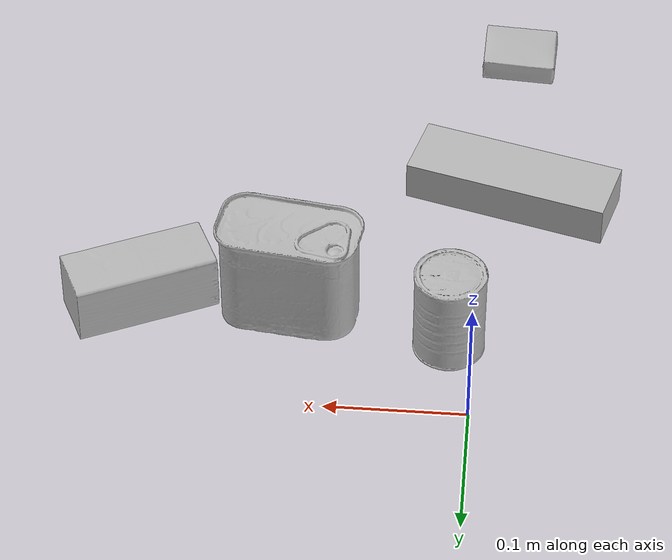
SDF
<sdf version="1.4">
  <world name="default">
    <light name="light1" type="point">
      <pose>0 0 1 0 0 0</pose>
      <diffuse>3 3 3 1</diffuse>
      <specular>3 3 3 1</specular>
    </light>
    <light name="light2" type="point">
      <pose>0 0.5 2 0 0 0</pose>
      <diffuse>1 1 1 1</diffuse>
      <specular>1 1 1 1</specular>
    </light>
    <light name="light3" type="point">
      <pose>0 0.5 2 0 0 0</pose>
      <diffuse>3 3 3 1</diffuse>
      <specular>3 3 3 1</specular>
    </light>
    <scene>
      <ambient>0.7 0.7 0.7</ambient>
    </scene>
    <model name="box1">
      <link name="link_box1">
        <collision name="default">
          <geometry>
            <mesh>
              <uri>model://pudding_box/collision_meshes/collision.obj</uri>
              <scale>0.5 0.5 0.5</scale>
            </mesh>
          </geometry>
          <surface>
            <friction>
              <ode>
                <mu>0.5</mu>
                <mu2>0.5</mu2>
              </ode>
            </friction>
          <contact>
        <ode>
            <max_vel>0</max_vel>
            <min_depth>0.0001</min_depth>
            <kp>1e8</kp>
        </ode>
    </contact></surface>
        </collision>
        <visual name="default">
          <geometry>
            <mesh>
              <uri>model://pudding_box/visual_meshes/visual.dae</uri>
              <scale>0.5 0.5 0.5</scale>
            </mesh>
          </geometry>
        </visual>
        <inertial>
          <mass>0.0642586499452591</mass>
          <pose>0.00024474109522998333 0.00040339428232982755 -0.0002594413817860186 0.005213101302141142 -0.006603800581388343 0.020079827019462423</pose>
          <inertia>
            <ixx>1.8160274e-05</ixx>
            <iyy>1.221836e-05</iyy>
            <izz>2.6818392e-05</izz>
            <ixy>0</ixy>
            <ixz>0</ixz>
            <iyz>0</iyz>
          </inertia>
        </inertial>
      </link>
      <pose>-0.022452417761087418 -0.37592819333076477 0.009862901642918587 0.022348546141078666 -0.01139165365372687 -1.6013829348388051</pose>
    </model>
    <model name="box2">
      <link name="link_box2">
        <collision name="default">
          <geometry>
            <mesh>
              <uri>model://wood_block/collision_meshes/collision.obj</uri>
              <scale>0.5 0.5 0.5</scale>
            </mesh>
          </geometry>
          <surface>
            <friction>
              <ode>
                <mu>0.5</mu>
                <mu2>0.5</mu2>
              </ode>
            </friction>
          <contact>
        <ode>
            <max_vel>0</max_vel>
            <min_depth>0.0001</min_depth>
            <kp>1e8</kp>
        </ode>
    </contact></surface>
        </collision>
        <visual name="default">
          <geometry>
            <mesh>
              <uri>model://wood_block/visual_meshes/visual.dae</uri>
              <scale>0.5 0.5 0.5</scale>
            </mesh>
          </geometry>
        </visual>
        <inertial>
          <mass>0.2432606816291809</mass>
          <pose>-2.9066577553749084e-06 -0.000285404734313488 0.00013204290007706732 -0.0522103103121059 -0.005192696448147362 -0.0068613788455752145</pose>
          <inertia>
            <ixx>8.1379905e-05</ixx>
            <iyy>0.0002570791</iyy>
            <izz>0.00025611752</izz>
            <ixy>0</ixy>
            <ixz>0</ixz>
            <iyz>0</iyz>
          </inertia>
        </inertial>
      </link>
      <pose>0.23707535862922668 -0.08963603526353836 0.022629261016845703 -0.0052084406892836475 0.005718727810165936 -2.7040458333418926</pose>
    </model>
    <model name="box3">
      <link name="link_box3">
        <collision name="default">
          <geometry>
            <mesh>
              <uri>model://jenga/collision_meshes/collision.obj</uri>
              <scale>1.0 1.0 1.0</scale>
            </mesh>
          </geometry>
          <surface>
            <friction>
              <ode>
                <mu>0.5</mu>
                <mu2>0.5</mu2>
              </ode>
            </friction>
          <contact>
        <ode>
            <max_vel>0</max_vel>
            <min_depth>0.0001</min_depth>
            <kp>1e8</kp>
        </ode>
    </contact></surface>
        </collision>
        <visual name="default">
          <geometry>
            <mesh>
              <uri>model://jenga/visual_meshes/visual.dae</uri>
              <scale>1.0 1.0 1.0</scale>
            </mesh>
          </geometry>
        </visual>
        <inertial>
          <mass>0.20405839383602142</mass>
          <pose>-2.502855807051674e-07 -0.00010250010382151231 -4.0923401684267446e-05 0.0 -7.342155186052628e-07 0.0</pose>
          <inertia>
            <ixx>5.6467907e-05</ixx>
            <iyy>0.000382625</iyy>
            <izz>0.00040848472</izz>
            <ixy>0</ixy>
            <ixz>0</ixz>
            <iyz>0</iyz>
          </inertia>
        </inertial>
      </link>
      <pose>-0.02232282981276512 -0.22162748873233795 0.014999997802078724 -1.7403690100089617e-08 1.541721351748581e-10 2.870991514907793</pose>
    </model>
    <model name="can1">
      <link name="link_can1">
        <collision name="default">
          <geometry>
            <mesh>
              <uri>model://potted_meat_can/collision_meshes/collision.obj</uri>
              <scale>1.0 1.0 1.0</scale>
            </mesh>
          </geometry>
          <surface>
            <friction>
              <ode>
                <mu>0.5</mu>
                <mu2>0.5</mu2>
              </ode>
            </friction>
          <contact>
        <ode>
            <max_vel>0</max_vel>
            <min_depth>0.0001</min_depth>
            <kp>1e8</kp>
        </ode>
    </contact></surface>
        </collision>
        <visual name="default">
          <geometry>
            <mesh>
              <uri>model://potted_meat_can/visual_meshes/visual.dae</uri>
              <scale>1.0 1.0 1.0</scale>
            </mesh>
          </geometry>
        </visual>
        <inertial>
          <mass>0.4665880799293518</mass>
          <pose>0.0002288814284838736 -5.989112105453387e-05 -0.0006367449532262981 -0.028093382538733707 -0.007232605550223235 0.01540626728411476</pose>
          <inertia>
            <ixx>0.0006002166</ixx>
            <iyy>0.0003646772</iyy>
            <izz>0.00043654343</izz>
            <ixy>0</ixy>
            <ixz>0</ixz>
            <iyz>0</iyz>
          </inertia>
        </inertial>
      </link>
      <pose>0.13041849434375763 -0.0893159732222557 0.04212800785899162 -5.611112268325114e-08 -4.7149351817975124e-07 -1.7201702668150305</pose>
    </model>
    <model name="can2">
      <link name="link_can2">
        <collision name="default">
          <geometry>
            <mesh>
              <uri>model://master_chef_can/collision_meshes/collision.obj</uri>
              <scale>0.5 0.5 0.5</scale>
            </mesh>
          </geometry>
          <surface>
            <friction>
              <ode>
                <mu>0.5</mu>
                <mu2>0.5</mu2>
              </ode>
            </friction>
          <contact>
        <ode>
            <max_vel>0</max_vel>
            <min_depth>0.0001</min_depth>
            <kp>1e8</kp>
        </ode>
    </contact></surface>
        </collision>
        <visual name="default">
          <geometry>
            <mesh>
              <uri>model://master_chef_can/visual_meshes/visual.dae</uri>
              <scale>0.5 0.5 0.5</scale>
            </mesh>
          </geometry>
        </visual>
        <inertial>
          <mass>0.1648906171321869</mass>
          <pose>-4.661964703700505e-05 1.3926853625889635e-07 -5.079993206891231e-05 -0.0017995099244119924 0.0006479308957776391 -0.6102586503741109</pose>
          <inertia>
            <ixx>9.677961e-05</ixx>
            <iyy>9.606731e-05</iyy>
            <izz>5.3478136e-05</izz>
            <ixy>0</ixy>
            <ixz>0</ixz>
            <iyz>0</iyz>
          </inertia>
        </inertial>
      </link>
      <pose>0.01686730422079563 -0.06528550386428833 0.03530198708176613 -1.4721967564814605e-06 -7.629207802529786e-07 0.5546823585211699</pose>
    </model>
  <physics type="ode">
      <max_contacts>50</max_contacts>
      <ode>
        <solver>
          <type>quick</type>
          <iters>75</iters>
        </solver>
        <constraints>
          <contact_max_correcting_vel>0</contact_max_correcting_vel>
          <contact_surface_layer>0</contact_surface_layer>
        </constraints>
      </ode>
    </physics></world>
</sdf>
